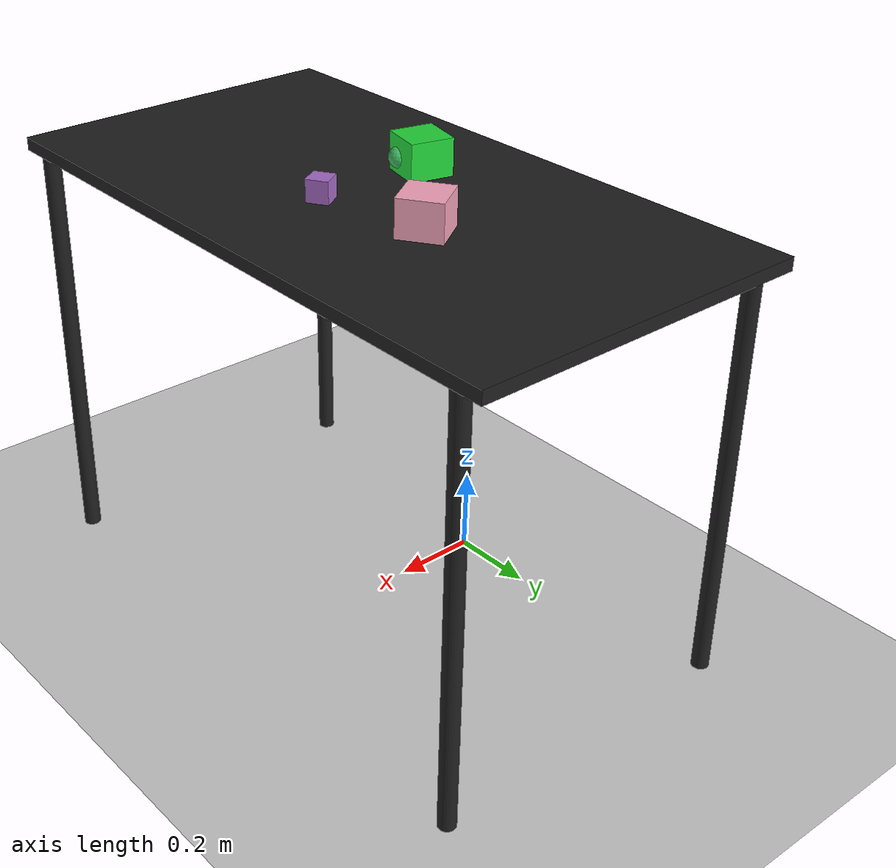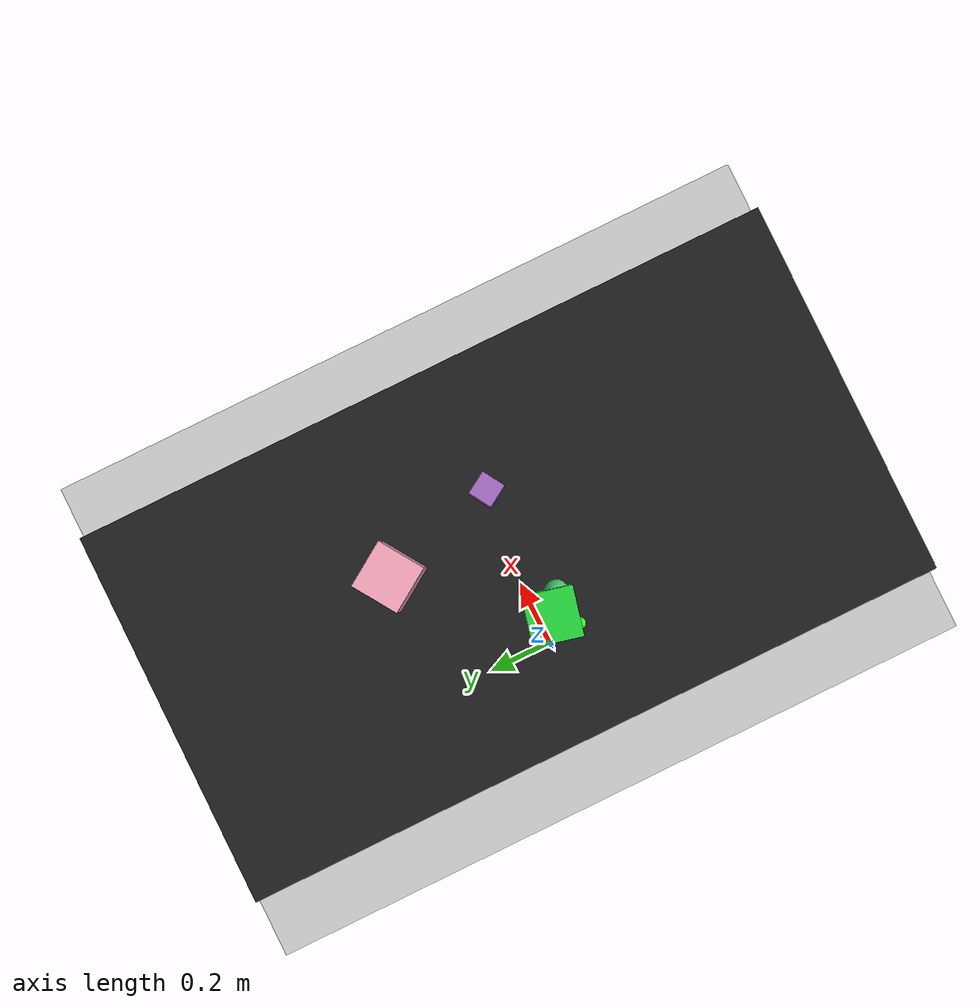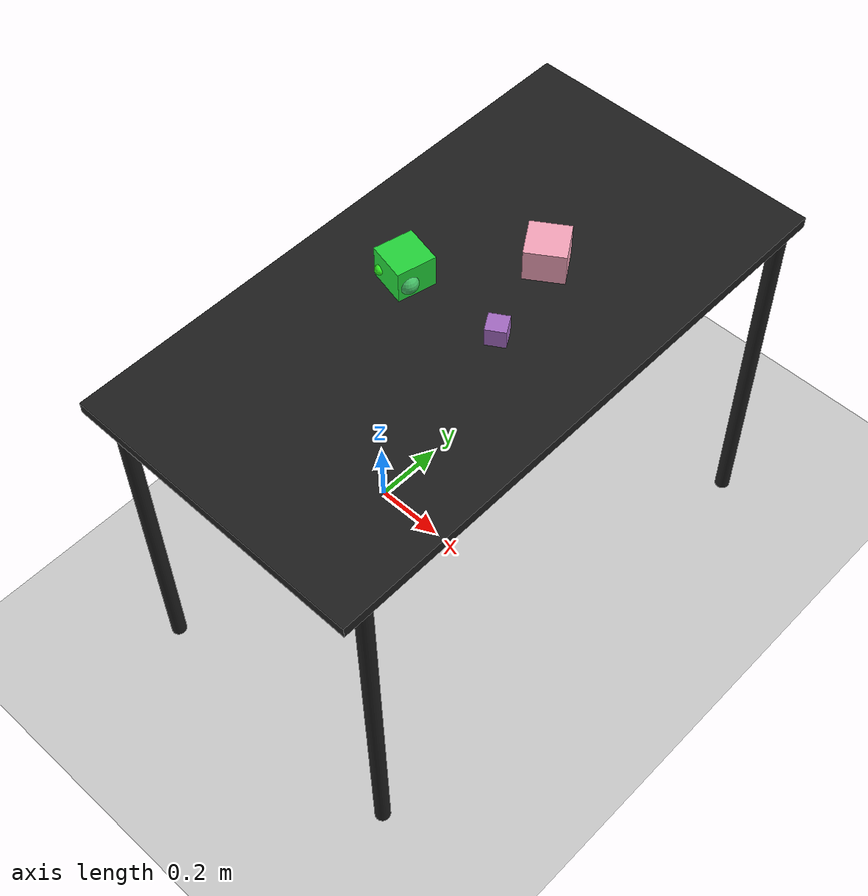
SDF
<?xml version="1.0" ?>
<sdf version="1.6">
  <world name="arm_world">
    <plugin filename="gz-sim-physics-system" name="gz::sim::systems::Physics">
      <engine>
        <filename>libgz-physics-bullet-featherstone-plugin.so</filename>
      </engine>
    </plugin>
    <plugin filename="gz-sim-user-commands-system" name="gz::sim::systems::UserCommands"/>
    <plugin filename="gz-sim-scene-broadcaster-system" name="gz::sim::systems::SceneBroadcaster"/>
    <plugin filename="gz-sim-sensors-system" name="gz::sim::systems::Sensors">
      <render_engine>ogre2</render_engine>
    </plugin>
    <gravity>0.0 0.0 -9.8</gravity>
    <scene>
      <shadows>false</shadows>
    </scene>
    <gui>
      <camera name="user_camera">
        <pose>0.75 -0.75 1.4 0 0.29 2.21</pose>
      </camera>
    </gui>
    <include>
      <uri>https://fuel.gazebosim.org/1.0/OpenRobotics/models/Sun</uri>
    </include>
    <model name="table">
      <static>true</static>
      <include>
        <uri>model://table</uri>
      </include>
      <pose>0.29 0 0 0 0 1.5708</pose>
    </model>
    <model name="ground_plane">
      <static>true</static>
      <link name="link">
        <collision name="collision">
          <geometry>
            <plane>
              <normal>0 0 1</normal>
            </plane>
          </geometry>
          <surface>
            <friction>
              <ode>
                <mu>1.0</mu>
                <mu2>1.0</mu2>
              </ode>
            </friction>
          </surface>
        </collision>
        <visual name="visual">
          <geometry>
            <plane>
              <normal>0 0 1</normal>
              <size>100 100</size>
            </plane>
          </geometry>
          <material>
            <ambient>0.8 0.8 0.8 1</ambient>
            <diffuse>0.8 0.8 0.8 1</diffuse>
            <specular>0.8 0.8 0.8 1</specular>
          </material>
        </visual>
      </link>
    </model>
    <model name="cube_l_0">
      <pose>0.349 0.225 1.05 0 0 2.15</pose>
      <link name="cube_l_0_link">
        <inertial>
          <mass>0.05</mass>
          <inertia>
            <ixx>2.04e-7</ixx>
            <iyy>2.04e-7</iyy>
            <izz>3.9e-8</izz>
            <ixy>0</ixy>
            <ixz>0</ixz>
            <iyz>0</iyz>
          </inertia>
        </inertial>
        <collision name="cube_l_0_collision">
          <geometry>
            <box>
              <size>0.1 0.1 0.1</size>
            </box>
          </geometry>
          <surface>
            <friction>
              <ode>
                <mu>0.8</mu>
                <mu2>0.8</mu2>
                <fdir1>0 0 1</fdir1>
                <slip1>0.001</slip1>
                <slip2>0.001</slip2>
              </ode>
              <torsional>
                <coefficient>0.1</coefficient>
                <surface_radius>0.015</surface_radius>
                <use_patch_radius>true</use_patch_radius>
              </torsional>
            </friction>
            <contact>
              <ode>
                <kp>1e5</kp>
                <kd>10</kd>
                <max_vel>0.1</max_vel>
                <min_depth>0.001</min_depth>
                <soft_cfm>0.01</soft_cfm>
                <soft_erp>0.2</soft_erp>
              </ode>
            </contact>
            <bounce>
              <restitution_coefficient>0.2</restitution_coefficient>
              <threshold>0.01</threshold>
            </bounce>
          </surface>
        </collision>
        <visual name="cube_l_0_visual">
          <geometry>
            <box>
              <size>0.1 0.1 0.1</size>
            </box>
          </geometry>
          <material>
            <ambient>0.97 0.65 0.74 1</ambient>
            <diffuse>0.97 0.65 0.74 1</diffuse>
          </material>
        </visual>
        <velocity_decay>
          <linear>1</linear>
          <angular>1</angular>
        </velocity_decay>
      </link>
    </model>
    <model name="sphere_m_1">
      <pose>0.181 -0.051 1.05 0 0 3.09</pose>
      <link name="sphere_m_1_link">
        <inertial>
          <mass>0.05</mass>
          <inertia>
            <ixx>2.04e-7</ixx>
            <iyy>2.04e-7</iyy>
            <izz>3.9e-8</izz>
            <ixy>0</ixy>
            <ixz>0</ixz>
            <iyz>0</iyz>
          </inertia>
        </inertial>
        <collision name="sphere_m_1_collision">
          <geometry>
            <sphere>
              <radius>0.025</radius>
            </sphere>
          </geometry>
          <surface>
            <friction>
              <ode>
                <mu>0.8</mu>
                <mu2>0.8</mu2>
                <fdir1>0 0 1</fdir1>
                <slip1>0.001</slip1>
                <slip2>0.001</slip2>
              </ode>
              <torsional>
                <coefficient>0.1</coefficient>
                <surface_radius>0.015</surface_radius>
                <use_patch_radius>true</use_patch_radius>
              </torsional>
            </friction>
            <contact>
              <ode>
                <kp>1e5</kp>
                <kd>10</kd>
                <max_vel>0.1</max_vel>
                <min_depth>0.001</min_depth>
                <soft_cfm>0.01</soft_cfm>
                <soft_erp>0.2</soft_erp>
              </ode>
            </contact>
            <bounce>
              <restitution_coefficient>0.2</restitution_coefficient>
              <threshold>0.01</threshold>
            </bounce>
          </surface>
        </collision>
        <visual name="sphere_m_1_visual">
          <geometry>
            <sphere>
              <radius>0.025</radius>
            </sphere>
          </geometry>
          <material>
            <ambient>0.26 0.74 0.39 1</ambient>
            <diffuse>0.26 0.74 0.39 1</diffuse>
          </material>
        </visual>
        <velocity_decay>
          <linear>1</linear>
          <angular>1</angular>
        </velocity_decay>
      </link>
    </model>
    <model name="cube_l_2">
      <pose>0.145 -0.023 1.05 0 0 2.91</pose>
      <link name="cube_l_2_link">
        <inertial>
          <mass>0.05</mass>
          <inertia>
            <ixx>2.04e-7</ixx>
            <iyy>2.04e-7</iyy>
            <izz>3.9e-8</izz>
            <ixy>0</ixy>
            <ixz>0</ixz>
            <iyz>0</iyz>
          </inertia>
        </inertial>
        <collision name="cube_l_2_collision">
          <geometry>
            <box>
              <size>0.1 0.1 0.1</size>
            </box>
          </geometry>
          <surface>
            <friction>
              <ode>
                <mu>0.8</mu>
                <mu2>0.8</mu2>
                <fdir1>0 0 1</fdir1>
                <slip1>0.001</slip1>
                <slip2>0.001</slip2>
              </ode>
              <torsional>
                <coefficient>0.1</coefficient>
                <surface_radius>0.015</surface_radius>
                <use_patch_radius>true</use_patch_radius>
              </torsional>
            </friction>
            <contact>
              <ode>
                <kp>1e5</kp>
                <kd>10</kd>
                <max_vel>0.1</max_vel>
                <min_depth>0.001</min_depth>
                <soft_cfm>0.01</soft_cfm>
                <soft_erp>0.2</soft_erp>
              </ode>
            </contact>
            <bounce>
              <restitution_coefficient>0.2</restitution_coefficient>
              <threshold>0.01</threshold>
            </bounce>
          </surface>
        </collision>
        <visual name="cube_l_2_visual">
          <geometry>
            <box>
              <size>0.1 0.1 0.1</size>
            </box>
          </geometry>
          <material>
            <ambient>0.14 0.84 0.23 1</ambient>
            <diffuse>0.14 0.84 0.23 1</diffuse>
          </material>
        </visual>
        <velocity_decay>
          <linear>1</linear>
          <angular>1</angular>
        </velocity_decay>
      </link>
    </model>
    <model name="sphere_s_3">
      <pose>0.106 -0.065 1.05 0 0 2.75</pose>
      <link name="sphere_s_3_link">
        <inertial>
          <mass>0.05</mass>
          <inertia>
            <ixx>2.04e-7</ixx>
            <iyy>2.04e-7</iyy>
            <izz>3.9e-8</izz>
            <ixy>0</ixy>
            <ixz>0</ixz>
            <iyz>0</iyz>
          </inertia>
        </inertial>
        <collision name="sphere_s_3_collision">
          <geometry>
            <sphere>
              <radius>0.0125</radius>
            </sphere>
          </geometry>
          <surface>
            <friction>
              <ode>
                <mu>0.8</mu>
                <mu2>0.8</mu2>
                <fdir1>0 0 1</fdir1>
                <slip1>0.001</slip1>
                <slip2>0.001</slip2>
              </ode>
              <torsional>
                <coefficient>0.1</coefficient>
                <surface_radius>0.015</surface_radius>
                <use_patch_radius>true</use_patch_radius>
              </torsional>
            </friction>
            <contact>
              <ode>
                <kp>1e5</kp>
                <kd>10</kd>
                <max_vel>0.1</max_vel>
                <min_depth>0.001</min_depth>
                <soft_cfm>0.01</soft_cfm>
                <soft_erp>0.2</soft_erp>
              </ode>
            </contact>
            <bounce>
              <restitution_coefficient>0.2</restitution_coefficient>
              <threshold>0.01</threshold>
            </bounce>
          </surface>
        </collision>
        <visual name="sphere_s_3_visual">
          <geometry>
            <sphere>
              <radius>0.0125</radius>
            </sphere>
          </geometry>
          <material>
            <ambient>0.19 0.99 0.13 1</ambient>
            <diffuse>0.19 0.99 0.13 1</diffuse>
          </material>
        </visual>
        <velocity_decay>
          <linear>1</linear>
          <angular>1</angular>
        </velocity_decay>
      </link>
    </model>
    <model name="cube_m_4">
      <pose>0.418 -0.017 1.05 0 0 3.69</pose>
      <link name="cube_m_4_link">
        <inertial>
          <mass>0.05</mass>
          <inertia>
            <ixx>2.04e-7</ixx>
            <iyy>2.04e-7</iyy>
            <izz>3.9e-8</izz>
            <ixy>0</ixy>
            <ixz>0</ixz>
            <iyz>0</iyz>
          </inertia>
        </inertial>
        <collision name="cube_m_4_collision">
          <geometry>
            <box>
              <size>0.05 0.05 0.05</size>
            </box>
          </geometry>
          <surface>
            <friction>
              <ode>
                <mu>0.8</mu>
                <mu2>0.8</mu2>
                <fdir1>0 0 1</fdir1>
                <slip1>0.001</slip1>
                <slip2>0.001</slip2>
              </ode>
              <torsional>
                <coefficient>0.1</coefficient>
                <surface_radius>0.015</surface_radius>
                <use_patch_radius>true</use_patch_radius>
              </torsional>
            </friction>
            <contact>
              <ode>
                <kp>1e5</kp>
                <kd>10</kd>
                <max_vel>0.1</max_vel>
                <min_depth>0.001</min_depth>
                <soft_cfm>0.01</soft_cfm>
                <soft_erp>0.2</soft_erp>
              </ode>
            </contact>
            <bounce>
              <restitution_coefficient>0.2</restitution_coefficient>
              <threshold>0.01</threshold>
            </bounce>
          </surface>
        </collision>
        <visual name="cube_m_4_visual">
          <geometry>
            <box>
              <size>0.05 0.05 0.05</size>
            </box>
          </geometry>
          <material>
            <ambient>0.65 0.42 0.77 1</ambient>
            <diffuse>0.65 0.42 0.77 1</diffuse>
          </material>
        </visual>
        <velocity_decay>
          <linear>1</linear>
          <angular>1</angular>
        </velocity_decay>
      </link>
    </model>
  </world>
</sdf>

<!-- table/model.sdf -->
<sdf version="1.5">
  <model name="table">
    <static>true</static>
    <link name="link">
      <collision name="surface">
        <pose>0 0 1.0 0 0 0</pose>
        <geometry>
          <box>
            <size>1.5 0.8 0.03</size>
          </box>
        </geometry>
        <surface>
          <friction>
            <ode>
              <mu>0.6</mu>
              <mu2>0.6</mu2>
            </ode>
          </friction>
        </surface>
      </collision>
      <visual name="surface">
        <pose>0 0 1.0 0 0 0</pose>
        <geometry>
          <box>
            <size>1.5 0.8 0.03</size>
          </box>
        </geometry>
        <material>
          <script>
            <uri>file://media/materials/scripts/gazebo.material</uri>
            <name>Gazebo/Black</name>
          </script>
        </material>
      </visual>
      <collision name="front_left_leg">
        <pose>0.68 0.38 0.5 0 0 0</pose>
        <geometry>
          <cylinder>
            <radius>0.02</radius>
            <length>1.0</length>
          </cylinder>
        </geometry>
      </collision>
      <visual name="front_left_leg">
        <pose>0.68 0.38 0.5 0 0 0</pose>
        <geometry>
          <cylinder>
            <radius>0.02</radius>
            <length>1.0</length>
          </cylinder>
        </geometry>
        <material>
          <script>
            <uri>file://media/materials/scripts/gazebo.material</uri>
            <name>Gazebo/Black</name>
          </script>
        </material>
      </visual>
      <collision name="front_right_leg">
        <pose>0.68 -0.38 0.5 0 0 0</pose>
        <geometry>
          <cylinder>
            <radius>0.02</radius>
            <length>1.0</length>
          </cylinder>
        </geometry>
      </collision>
      <visual name="front_right_leg">
        <pose>0.68 -0.38 0.5 0 0 0</pose>
        <geometry>
          <cylinder>
            <radius>0.02</radius>
            <length>1.0</length>
          </cylinder>
        </geometry>
        <material>
          <script>
            <uri>file://media/materials/scripts/gazebo.material</uri>
            <name>Gazebo/Black</name>
          </script>
        </material>
      </visual>
      <collision name="back_right_leg">
        <pose>-0.68 -0.38 0.5 0 0 0</pose>
        <geometry>
          <cylinder>
            <radius>0.02</radius>
            <length>1.0</length>
          </cylinder>
        </geometry>
      </collision>
      <visual name="back_right_leg">
        <pose>-0.68 -0.38 0.5 0 0 0</pose>
        <geometry>
          <cylinder>
            <radius>0.02</radius>
            <length>1.0</length>
          </cylinder>
        </geometry>
        <material>
          <script>
            <uri>file://media/materials/scripts/gazebo.material</uri>
            <name>Gazebo/Black</name>
          </script>
        </material>
      </visual>
      <collision name="back_left_leg">
        <pose>-0.68 0.38 0.5 0 0 0</pose>
        <geometry>
          <cylinder>
            <radius>0.02</radius>
            <length>1.0</length>
          </cylinder>
        </geometry>
      </collision>
      <visual name="back_left_leg">
        <pose>-0.68 0.38 0.5 0 0 0</pose>
        <geometry>
          <cylinder>
            <radius>0.02</radius>
            <length>1.0</length>
          </cylinder>
        </geometry>
        <material>
          <script>
            <uri>file://media/materials/scripts/gazebo.material</uri>
            <name>Gazebo/Black</name>
          </script>
        </material>
      </visual>
    </link>
  </model>
</sdf>
